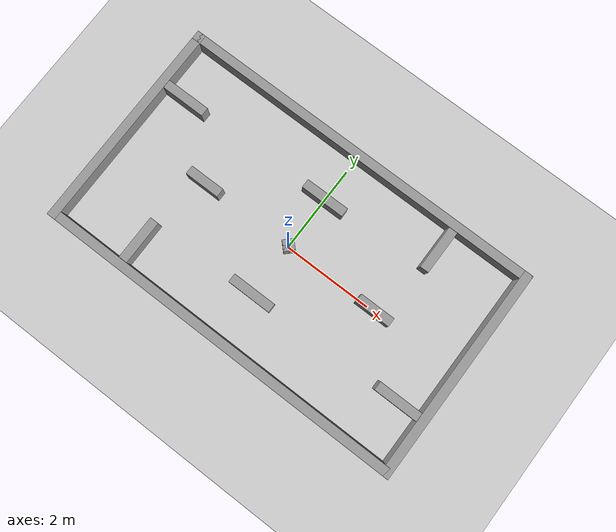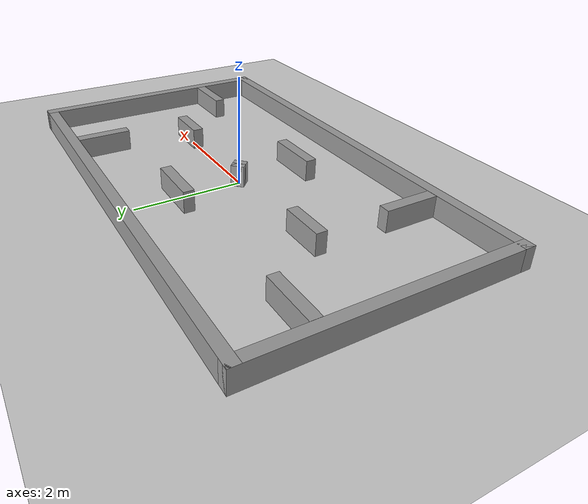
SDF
<sdf version="1.6">
 <world name="default">
  <light name="sun" type="directional">
   <pose>0 0 10 0 -0 0</pose>
   <diffuse>0.8 0.8 0.8 1</diffuse>
   <specular>0.1 0.1 0.1 1</specular>
   <attenuation>
    <range>1000</range>
    <constant>0.9</constant>
    <linear>0.01</linear>
    <quadratic>0.001</quadratic>
   </attenuation>
   <direction>-0.5 0.5 -1</direction>
  </light>
  <model name="ground_plane">
   <static>1</static>
   <link name="link">
    <collision name="collision">
     <geometry><plane><normal>0 0 1</normal><size>100 100</size></plane></geometry>
     <surface><friction><ode><mu>100</mu><mu2>50</mu2></ode></friction></surface>
    </collision>
    <visual name="visual">
     <cast_shadows>0</cast_shadows>
     <geometry><plane><normal>0 0 1</normal><size>100 100</size></plane></geometry>
     <material>
      <script><uri>file://media/materials/scripts/gazebo.material</uri><name>Gazebo/Grey</name></script>
     </material>
    </visual>
   </link>
  </model>
  <gravity>0 0 -9.8</gravity>
  <magnetic_field>6e-06 2.3e-05 -4.2e-05</magnetic_field>
  <atmosphere type="adiabatic"/>
  <physics name="default_physics" default="0" type="ode">
   <max_step_size>0.001</max_step_size>
   <real_time_factor>1</real_time_factor>
   <real_time_update_rate>1000</real_time_update_rate>
  </physics>
  <scene><ambient>0.4 0.4 0.4 1</ambient><background>0.7 0.7 0.7 1</background><shadows>1</shadows></scene>
  <spherical_coordinates>
   <surface_model>EARTH_WGS84</surface_model>
   <latitude_deg>0</latitude_deg>
   <longitude_deg>0</longitude_deg>
   <elevation>0</elevation>
   <heading_deg>0</heading_deg>
  </spherical_coordinates>
  <model name="icra2020">
   <link name="Wall_0">
    <collision name="Wall_0_Collision">
     <geometry><box><size>8.484 0.2 0.4</size></box></geometry>
     <pose>0 0 0.2 0 -0 0</pose>
    </collision>
    <visual name="Wall_0_Visual">
     <pose>0 0 0.2 0 -0 0</pose>
     <geometry><box><size>8.484 0.2 0.4</size></box></geometry>
     <material>
      <script><uri>file://media/materials/scripts/gazebo.material</uri><name>Gazebo/Grey</name></script>
      <ambient>1 1 1 1</ambient>
     </material>
    </visual>
    <pose>0 2.342 0 0 -0 0</pose>
   </link>
   <link name="Wall_1">
    <collision name="Wall_1_Collision">
     <geometry><box><size>4.884 0.2 0.4</size></box></geometry>
     <pose>0 0 0.2 0 -0 0</pose>
    </collision>
    <visual name="Wall_1_Visual">
     <pose>0 0 0.2 0 -0 0</pose>
     <geometry><box><size>4.884 0.2 0.4</size></box></geometry>
     <material>
      <script><uri>file://media/materials/scripts/gazebo.material</uri><name>Gazebo/Grey</name></script>
      <ambient>1 1 1 1</ambient>
     </material>
    </visual>
    <pose>4.142 0 0 0 0 -1.5708</pose>
   </link>
   <link name="Wall_10">
    <collision name="Wall_10_Collision">
     <geometry><box><size>0.8 0.2 0.4</size></box></geometry>
     <pose>0 0 0.2 0 -0 0</pose>
    </collision>
    <visual name="Wall_10_Visual">
     <pose>0 0 0.2 0 -0 0</pose>
     <geometry><box><size>0.8 0.2 0.4</size></box></geometry>
     <material>
      <script><uri>file://media/materials/scripts/gazebo.material</uri><name>Gazebo/Grey</name></script>
      <ambient>1 1 1 1</ambient>
     </material>
    </visual>
    <pose>2.14 0 0 0 -0 0</pose>
   </link>
   <link name="Wall_12">
    <collision name="Wall_12_Collision">
     <geometry><box><size>0.8 0.2 0.4</size></box></geometry>
     <pose>0 0 0.2 0 -0 0</pose>
    </collision>
    <visual name="Wall_12_Visual">
     <pose>0 0 0.2 0 -0 0</pose>
     <geometry><box><size>0.8 0.2 0.4</size></box></geometry>
     <material>
      <script><uri>file://media/materials/scripts/gazebo.material</uri><name>Gazebo/Grey</name></script>
      <ambient>1 1 1 1</ambient>
     </material>
    </visual>
    <pose>-2.14 0 0 0 -0 0</pose>
   </link>
   <link name="Wall_14">
    <collision name="Wall_14_Collision">
     <geometry><box><size>1 0.2 0.4</size></box></geometry>
     <pose>0 0 0.2 0 -0 0</pose>
    </collision>
    <visual name="Wall_14_Visual">
     <pose>0 0 0.2 0 -0 0</pose>
     <geometry><box><size>1 0.2 0.4</size></box></geometry>
     <material>
      <script><uri>file://media/materials/scripts/gazebo.material</uri><name>Gazebo/Grey</name></script>
      <ambient>1 1 1 1</ambient>
     </material>
    </visual>
    <pose>0 1.205 0 0 -0 0</pose>
   </link>
   <link name="Wall_16">
    <collision name="Wall_16_Collision">
     <geometry><box><size>1 0.2 0.4</size></box></geometry>
     <pose>0 0 0.2 0 -0 0</pose>
    </collision>
    <visual name="Wall_16_Visual">
     <pose>0 0 0.2 0 -0 0</pose>
     <geometry><box><size>1 0.2 0.4</size></box></geometry>
     <material>
      <script><uri>file://media/materials/scripts/gazebo.material</uri><name>Gazebo/Grey</name></script>
      <ambient>1 1 1 1</ambient>
     </material>
    </visual>
    <pose>0 -1.205 0 0 -0 0</pose>
   </link>
   <link name="Wall_18">
    <collision name="Wall_18_Collision">
     <geometry><box><size>1 0.2 0.4</size></box></geometry>
     <pose>0 0 0.2 0 -0 0</pose>
    </collision>
    <visual name="Wall_18_Visual">
     <pose>0 0 0.2 0 -0 0</pose>
     <geometry><box><size>1 0.2 0.4</size></box></geometry>
     <material>
      <script><uri>file://media/materials/scripts/gazebo.material</uri><name>Gazebo/Grey</name></script>
      <ambient>1 1 1 1</ambient>
     </material>
    </visual>
    <pose>-3.54 1.14 0 0 -0 3.14159</pose>
   </link>
   <link name="Wall_2">
    <collision name="Wall_2_Collision">
     <geometry><box><size>8.484 0.2 0.4</size></box></geometry>
     <pose>0 0 0.2 0 -0 0</pose>
    </collision>
    <visual name="Wall_2_Visual">
     <pose>0 0 0.2 0 -0 0</pose>
     <geometry><box><size>8.484 0.2 0.4</size></box></geometry>
     <material>
      <script><uri>file://media/materials/scripts/gazebo.material</uri><name>Gazebo/Grey</name></script>
      <ambient>1 1 1 1</ambient>
     </material>
    </visual>
    <pose>0 -2.342 0 0 -0 3.14159</pose>
   </link>
   <link name="Wall_20">
    <collision name="Wall_20_Collision">
     <geometry><box><size>1 0.2 0.4</size></box></geometry>
     <pose>0 0 0.2 0 -0 0</pose>
    </collision>
    <visual name="Wall_20_Visual">
     <pose>0 0 0.2 0 -0 0</pose>
     <geometry><box><size>1 0.2 0.4</size></box></geometry>
     <material>
      <script><uri>file://media/materials/scripts/gazebo.material</uri><name>Gazebo/Grey</name></script>
      <ambient>1 1 1 1</ambient>
     </material>
    </visual>
    <pose>3.54 -1.14 0 0 -0 0</pose>
   </link>
   <link name="Wall_22">
    <collision name="Wall_22_Collision">
     <geometry><box><size>1 0.2 0.4</size></box></geometry>
     <pose>0 0 0.2 0 -0 0</pose>
    </collision>
    <visual name="Wall_22_Visual">
     <pose>0 0 0.2 0 -0 0</pose>
     <geometry><box><size>1 0.2 0.4</size></box></geometry>
     <material>
      <script><uri>file://media/materials/scripts/gazebo.material</uri><name>Gazebo/Grey</name></script>
      <ambient>1 1 1 1</ambient>
     </material>
    </visual>
    <pose>2.44 1.74 0 0 0 -1.5708</pose>
   </link>
   <link name="Wall_24">
    <collision name="Wall_24_Collision">
     <geometry><box><size>1 0.2 0.4</size></box></geometry>
     <pose>0 0 0.2 0 -0 0</pose>
    </collision>
    <visual name="Wall_24_Visual">
     <pose>0 0 0.2 0 -0 0</pose>
     <geometry><box><size>1 0.2 0.4</size></box></geometry>
     <material>
      <script><uri>file://media/materials/scripts/gazebo.material</uri><name>Gazebo/Grey</name></script>
      <ambient>1 1 1 1</ambient>
     </material>
    </visual>
    <pose>-2.44 -1.74 0 0 -0 1.5708</pose>
   </link>
   <link name="Wall_3">
    <collision name="Wall_3_Collision">
     <geometry><box><size>4.884 0.2 0.4</size></box></geometry>
     <pose>0 0 0.2 0 -0 0</pose>
    </collision>
    <visual name="Wall_3_Visual">
     <pose>0 0 0.2 0 -0 0</pose>
     <geometry><box><size>4.884 0.2 0.4</size></box></geometry>
     <material>
      <script><uri>file://media/materials/scripts/gazebo.material</uri><name>Gazebo/Grey</name></script>
      <ambient>1 1 1 1</ambient>
     </material>
    </visual>
    <pose>-4.142 0 0 0 -0 1.5708</pose>
   </link>
   <link name="Wall_5">
    <collision name="Wall_5_Collision">
     <geometry><box><size>0.244451 0.12 0.4</size></box></geometry>
     <pose>0 0 0.2 0 -0 0</pose>
    </collision>
    <visual name="Wall_5_Visual">
     <pose>0 0 0.2 0 -0 0</pose>
     <geometry><box><size>0.244451 0.12 0.4</size></box></geometry>
     <material>
      <script><uri>file://media/materials/scripts/gazebo.material</uri><name>Gazebo/Grey</name></script>
      <ambient>1 1 1 1</ambient>
     </material>
    </visual>
    <pose>-0.044 0.044 0 0 0 -2.35619</pose>
   </link>
   <link name="Wall_6">
    <collision name="Wall_6_Collision">
     <geometry><box><size>0.244451 0.12 0.4</size></box></geometry>
     <pose>0 0 0.2 0 -0 0</pose>
    </collision>
    <visual name="Wall_6_Visual">
     <pose>0 0 0.2 0 -0 0</pose>
     <geometry><box><size>0.244451 0.12 0.4</size></box></geometry>
     <material>
      <script><uri>file://media/materials/scripts/gazebo.material</uri><name>Gazebo/Grey</name></script>
      <ambient>1 1 1 1</ambient>
     </material>
    </visual>
    <pose>-0.044 -0.044 0 0 0 -0.785398</pose>
   </link>
   <link name="Wall_7">
    <collision name="Wall_7_Collision">
     <geometry><box><size>0.244451 0.12 0.4</size></box></geometry>
     <pose>0 0 0.2 0 -0 0</pose>
    </collision>
    <visual name="Wall_7_Visual">
     <pose>0 0 0.2 0 -0 0</pose>
     <geometry><box><size>0.244451 0.12 0.4</size></box></geometry>
     <material>
      <script><uri>file://media/materials/scripts/gazebo.material</uri><name>Gazebo/Grey</name></script>
      <ambient>1 1 1 1</ambient>
     </material>
    </visual>
    <pose>0.044 -0.044 0 0 -0 0.785398</pose>
   </link>
   <link name="Wall_8">
    <collision name="Wall_8_Collision">
     <geometry><box><size>0.244451 0.12 0.4</size></box></geometry>
     <pose>0 0 0.2 0 -0 0</pose>
    </collision>
    <visual name="Wall_8_Visual">
     <pose>0 0 0.2 0 -0 0</pose>
     <geometry><box><size>0.244451 0.12 0.4</size></box></geometry>
     <material>
      <script><uri>file://media/materials/scripts/gazebo.material</uri><name>Gazebo/Grey</name></script>
      <ambient>1 1 1 1</ambient>
     </material>
    </visual>
    <pose>0.044 0.044 0 0 -0 2.35619</pose>
   </link>
   <static>1</static>
  </model>
 </world>
</sdf>
